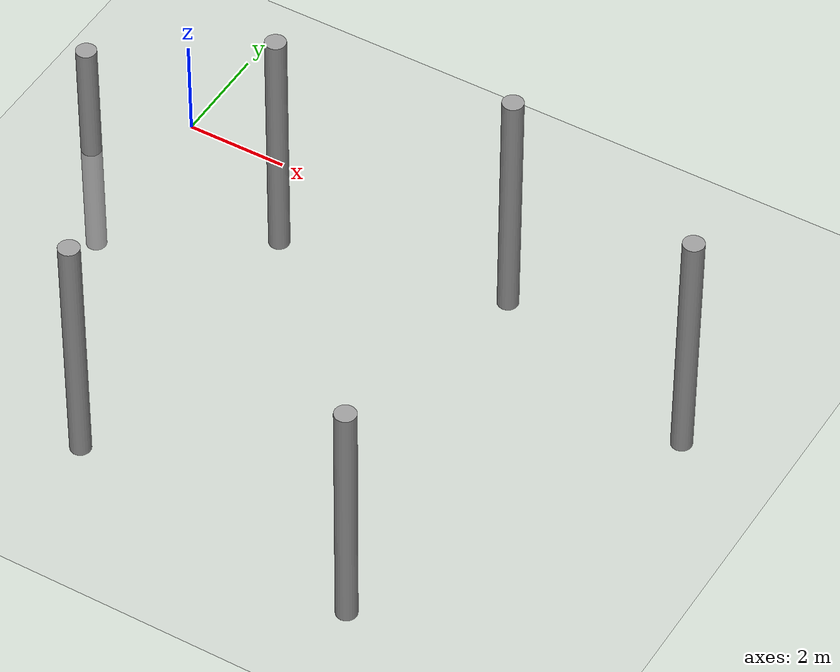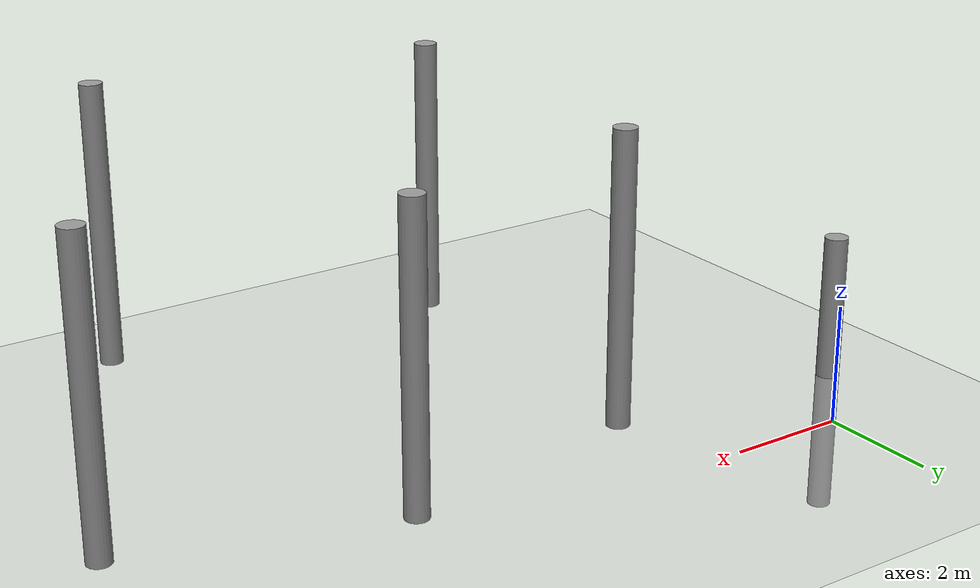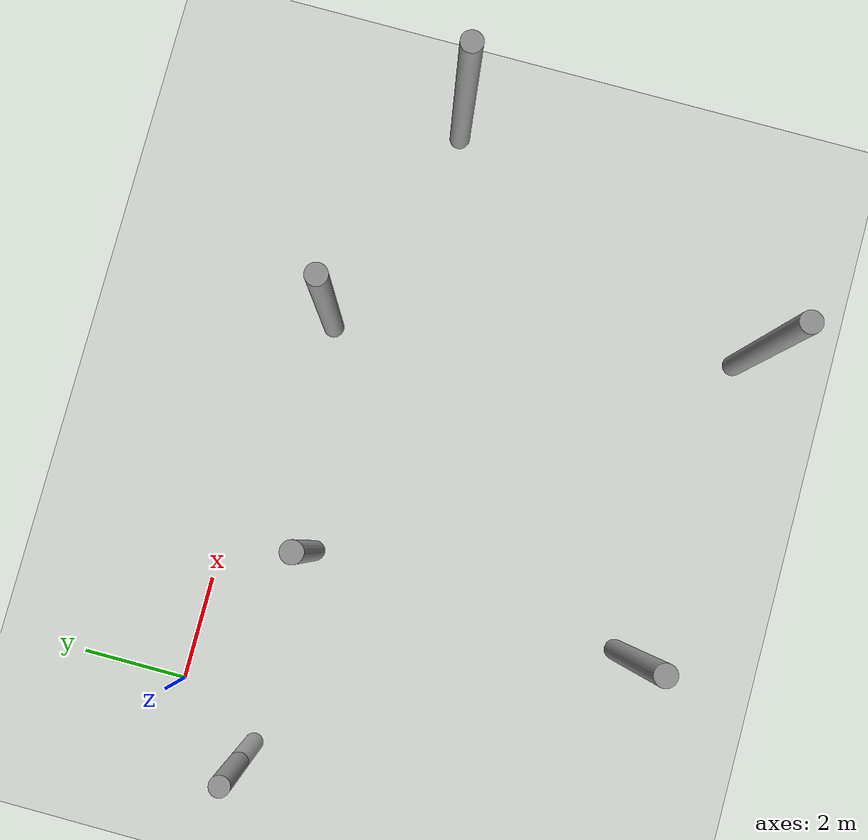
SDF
<sdf version="1.6">
 <world name="default">
  <model name="ground_plane">
   <static>1</static>
   <link name="link">
    <collision name="collision">
     <geometry><plane><normal>0 0 1</normal><size>100 100</size></plane></geometry>
     <surface><friction><ode><mu>100</mu><mu2>50</mu2></ode></friction></surface>
    </collision>
    <visual name="visual">
     <cast_shadows>0</cast_shadows>
     <geometry><plane><normal>0 0 1</normal><size>100 100</size></plane></geometry>
     <material>
      <script><uri>file://media/materials/scripts/gazebo.material</uri><name>Gazebo/Grey</name></script>
     </material>
    </visual>
   </link>
  </model>
  <model name="empty_pillars_8">
   <model name="empty_pillar_clone_30">
    <link name="link">
     <inertial>
      <mass>1</mass>
      <inertia><ixx>0.145833</ixx><ixy>0</ixy><ixz>0</ixz><iyy>0.145833</iyy><iyz>0</iyz><izz>0.125</izz></inertia>
     </inertial>
     <visual name="visual">
      <geometry><cylinder><radius>0.2</radius><length>5</length></cylinder></geometry>
      <material>
       <script><name>Gazebo/Grey</name><uri>file://media/materials/scripts/gazebo.material</uri></script>
       <shader type="vertex"><normal_map>__default__</normal_map></shader>
       <ambient>0.3 0.3 0.3 1</ambient>
       <diffuse>0.7 0.7 0.7 1</diffuse>
       <specular>0.01 0.01 0.01 1</specular>
       <emissive>0 0 0 1</emissive>
      </material>
     </visual>
     <collision name="collision">
      <geometry><cylinder><radius>0.05</radius><length>5</length></cylinder></geometry>
      <surface>
       <friction>
        <ode><mu>1</mu><mu2>1</mu2><fdir1>0 0 0</fdir1><slip1>0</slip1><slip2>0</slip2></ode>
        <torsional>
         <coefficient>1</coefficient>
         <patch_radius>0</patch_radius>
         <surface_radius>0</surface_radius>
         <use_patch_radius>1</use_patch_radius>
         <ode><slip>0</slip></ode>
        </torsional>
       </friction>
       <bounce><restitution_coefficient>0</restitution_coefficient><threshold>1e+06</threshold></bounce>
       <contact>
        <collide_without_contact>0</collide_without_contact>
        <collide_without_contact_bitmask>1</collide_without_contact_bitmask>
        <collide_bitmask>1</collide_bitmask>
        <ode>
         <soft_cfm>0</soft_cfm>
         <soft_erp>0.2</soft_erp>
         <kp>1e+13</kp>
         <kd>1</kd>
         <max_vel>0.01</max_vel>
         <min_depth>0</min_depth>
        </ode>
        <bullet>
         <split_impulse>1</split_impulse>
         <split_impulse_penetration_threshold>-0.01</split_impulse_penetration_threshold>
         <soft_cfm>0</soft_cfm>
         <soft_erp>0.2</soft_erp>
         <kp>1e+13</kp>
         <kd>1</kd>
        </bullet>
       </contact>
      </surface>
     </collision>
    </link>
    <static>0</static>
    <pose>23.752 19.2231 0 0 -0 0</pose>
   </model>
   <static>0</static>
   <pose>-25.0415 -20.6705 0 0 -0 0</pose>
  </model>
  <model name="empty_pillars_9">
   <model name="empty_pillar_clone_17">
    <link name="link">
     <inertial>
      <mass>1</mass>
      <inertia><ixx>0.145833</ixx><ixy>0</ixy><ixz>0</ixz><iyy>0.145833</iyy><iyz>0</iyz><izz>0.125</izz></inertia>
     </inertial>
     <visual name="visual">
      <geometry><cylinder><radius>0.2</radius><length>5</length></cylinder></geometry>
      <material>
       <script><name>Gazebo/Grey</name><uri>file://media/materials/scripts/gazebo.material</uri></script>
       <shader type="vertex"><normal_map>__default__</normal_map></shader>
       <ambient>0.3 0.3 0.3 1</ambient>
       <diffuse>0.7 0.7 0.7 1</diffuse>
       <specular>0.01 0.01 0.01 1</specular>
       <emissive>0 0 0 1</emissive>
      </material>
     </visual>
     <collision name="collision">
      <geometry><cylinder><radius>0.05</radius><length>5</length></cylinder></geometry>
      <surface>
       <friction>
        <ode><mu>1</mu><mu2>1</mu2><fdir1>0 0 0</fdir1><slip1>0</slip1><slip2>0</slip2></ode>
        <torsional>
         <coefficient>1</coefficient>
         <patch_radius>0</patch_radius>
         <surface_radius>0</surface_radius>
         <use_patch_radius>1</use_patch_radius>
         <ode><slip>0</slip></ode>
        </torsional>
       </friction>
       <bounce><restitution_coefficient>0</restitution_coefficient><threshold>1e+06</threshold></bounce>
       <contact>
        <collide_without_contact>0</collide_without_contact>
        <collide_without_contact_bitmask>1</collide_without_contact_bitmask>
        <collide_bitmask>1</collide_bitmask>
        <ode>
         <soft_cfm>0</soft_cfm>
         <soft_erp>0.2</soft_erp>
         <kp>1e+13</kp>
         <kd>1</kd>
         <max_vel>0.01</max_vel>
         <min_depth>0</min_depth>
        </ode>
        <bullet>
         <split_impulse>1</split_impulse>
         <split_impulse_penetration_threshold>-0.01</split_impulse_penetration_threshold>
         <soft_cfm>0</soft_cfm>
         <soft_erp>0.2</soft_erp>
         <kp>1e+13</kp>
         <kd>1</kd>
        </bullet>
       </contact>
      </surface>
     </collision>
    </link>
    <static>0</static>
    <pose>-16.0449 12.755 0 0 -0 0</pose>
   </model>
   <model name="empty_pillar_clone_20">
    <link name="link">
     <inertial>
      <mass>1</mass>
      <inertia><ixx>0.145833</ixx><ixy>0</ixy><ixz>0</ixz><iyy>0.145833</iyy><iyz>0</iyz><izz>0.125</izz></inertia>
     </inertial>
     <visual name="visual">
      <geometry><cylinder><radius>0.2</radius><length>5</length></cylinder></geometry>
      <material>
       <script><name>Gazebo/Grey</name><uri>file://media/materials/scripts/gazebo.material</uri></script>
       <shader type="vertex"><normal_map>__default__</normal_map></shader>
       <ambient>0.3 0.3 0.3 1</ambient>
       <diffuse>0.7 0.7 0.7 1</diffuse>
       <specular>0.01 0.01 0.01 1</specular>
       <emissive>0 0 0 1</emissive>
      </material>
     </visual>
     <collision name="collision">
      <geometry><cylinder><radius>0.05</radius><length>5</length></cylinder></geometry>
      <surface>
       <friction>
        <ode><mu>1</mu><mu2>1</mu2><fdir1>0 0 0</fdir1><slip1>0</slip1><slip2>0</slip2></ode>
        <torsional>
         <coefficient>1</coefficient>
         <patch_radius>0</patch_radius>
         <surface_radius>0</surface_radius>
         <use_patch_radius>1</use_patch_radius>
         <ode><slip>0</slip></ode>
        </torsional>
       </friction>
       <bounce><restitution_coefficient>0</restitution_coefficient><threshold>1e+06</threshold></bounce>
       <contact>
        <collide_without_contact>0</collide_without_contact>
        <collide_without_contact_bitmask>1</collide_without_contact_bitmask>
        <collide_bitmask>1</collide_bitmask>
        <ode>
         <soft_cfm>0</soft_cfm>
         <soft_erp>0.2</soft_erp>
         <kp>1e+13</kp>
         <kd>1</kd>
         <max_vel>0.01</max_vel>
         <min_depth>0</min_depth>
        </ode>
        <bullet>
         <split_impulse>1</split_impulse>
         <split_impulse_penetration_threshold>-0.01</split_impulse_penetration_threshold>
         <soft_cfm>0</soft_cfm>
         <soft_erp>0.2</soft_erp>
         <kp>1e+13</kp>
         <kd>1</kd>
        </bullet>
       </contact>
      </surface>
     </collision>
    </link>
    <static>0</static>
    <pose>-13.0146 19.1597 0 0 -0 0</pose>
   </model>
   <model name="empty_pillar_clone_21">
    <link name="link">
     <inertial>
      <mass>1</mass>
      <inertia><ixx>0.145833</ixx><ixy>0</ixy><ixz>0</ixz><iyy>0.145833</iyy><iyz>0</iyz><izz>0.125</izz></inertia>
     </inertial>
     <visual name="visual">
      <geometry><cylinder><radius>0.2</radius><length>5</length></cylinder></geometry>
      <material>
       <script><name>Gazebo/Grey</name><uri>file://media/materials/scripts/gazebo.material</uri></script>
       <shader type="vertex"><normal_map>__default__</normal_map></shader>
       <ambient>0.3 0.3 0.3 1</ambient>
       <diffuse>0.7 0.7 0.7 1</diffuse>
       <specular>0.01 0.01 0.01 1</specular>
       <emissive>0 0 0 1</emissive>
      </material>
     </visual>
     <collision name="collision">
      <geometry><cylinder><radius>0.05</radius><length>5</length></cylinder></geometry>
      <surface>
       <friction>
        <ode><mu>1</mu><mu2>1</mu2><fdir1>0 0 0</fdir1><slip1>0</slip1><slip2>0</slip2></ode>
        <torsional>
         <coefficient>1</coefficient>
         <patch_radius>0</patch_radius>
         <surface_radius>0</surface_radius>
         <use_patch_radius>1</use_patch_radius>
         <ode><slip>0</slip></ode>
        </torsional>
       </friction>
       <bounce><restitution_coefficient>0</restitution_coefficient><threshold>1e+06</threshold></bounce>
       <contact>
        <collide_without_contact>0</collide_without_contact>
        <collide_without_contact_bitmask>1</collide_without_contact_bitmask>
        <collide_bitmask>1</collide_bitmask>
        <ode>
         <soft_cfm>0</soft_cfm>
         <soft_erp>0.2</soft_erp>
         <kp>1e+13</kp>
         <kd>1</kd>
         <max_vel>0.01</max_vel>
         <min_depth>0</min_depth>
        </ode>
        <bullet>
         <split_impulse>1</split_impulse>
         <split_impulse_penetration_threshold>-0.01</split_impulse_penetration_threshold>
         <soft_cfm>0</soft_cfm>
         <soft_erp>0.2</soft_erp>
         <kp>1e+13</kp>
         <kd>1</kd>
        </bullet>
       </contact>
      </surface>
     </collision>
    </link>
    <static>0</static>
    <pose>-21.7273 19.7662 0 0 -0 0</pose>
   </model>
   <model name="empty_pillar_clone_22">
    <link name="link">
     <inertial>
      <mass>1</mass>
      <inertia><ixx>0.145833</ixx><ixy>0</ixy><ixz>0</ixz><iyy>0.145833</iyy><iyz>0</iyz><izz>0.125</izz></inertia>
     </inertial>
     <visual name="visual">
      <geometry><cylinder><radius>0.2</radius><length>5</length></cylinder></geometry>
      <material>
       <script><name>Gazebo/Grey</name><uri>file://media/materials/scripts/gazebo.material</uri></script>
       <shader type="vertex"><normal_map>__default__</normal_map></shader>
       <ambient>0.3 0.3 0.3 1</ambient>
       <diffuse>0.7 0.7 0.7 1</diffuse>
       <specular>0.01 0.01 0.01 1</specular>
       <emissive>0 0 0 1</emissive>
      </material>
     </visual>
     <collision name="collision">
      <geometry><cylinder><radius>0.05</radius><length>5</length></cylinder></geometry>
      <surface>
       <friction>
        <ode><mu>1</mu><mu2>1</mu2><fdir1>0 0 0</fdir1><slip1>0</slip1><slip2>0</slip2></ode>
        <torsional>
         <coefficient>1</coefficient>
         <patch_radius>0</patch_radius>
         <surface_radius>0</surface_radius>
         <use_patch_radius>1</use_patch_radius>
         <ode><slip>0</slip></ode>
        </torsional>
       </friction>
       <bounce><restitution_coefficient>0</restitution_coefficient><threshold>1e+06</threshold></bounce>
       <contact>
        <collide_without_contact>0</collide_without_contact>
        <collide_without_contact_bitmask>1</collide_without_contact_bitmask>
        <collide_bitmask>1</collide_bitmask>
        <ode>
         <soft_cfm>0</soft_cfm>
         <soft_erp>0.2</soft_erp>
         <kp>1e+13</kp>
         <kd>1</kd>
         <max_vel>0.01</max_vel>
         <min_depth>0</min_depth>
        </ode>
        <bullet>
         <split_impulse>1</split_impulse>
         <split_impulse_penetration_threshold>-0.01</split_impulse_penetration_threshold>
         <soft_cfm>0</soft_cfm>
         <soft_erp>0.2</soft_erp>
         <kp>1e+13</kp>
         <kd>1</kd>
        </bullet>
       </contact>
      </surface>
     </collision>
    </link>
    <static>0</static>
    <pose>-17.3667 20.5782 0 0 -0 0</pose>
   </model>
   <model name="empty_pillar_clone_50">
    <link name="link">
     <inertial>
      <mass>1</mass>
      <inertia><ixx>0.145833</ixx><ixy>0</ixy><ixz>0</ixz><iyy>0.145833</iyy><iyz>0</iyz><izz>0.125</izz></inertia>
     </inertial>
     <visual name="visual">
      <geometry><cylinder><radius>0.2</radius><length>5</length></cylinder></geometry>
      <material>
       <script><name>Gazebo/Grey</name><uri>file://media/materials/scripts/gazebo.material</uri></script>
       <shader type="vertex"><normal_map>__default__</normal_map></shader>
       <ambient>0.3 0.3 0.3 1</ambient>
       <diffuse>0.7 0.7 0.7 1</diffuse>
       <specular>0.01 0.01 0.01 1</specular>
       <emissive>0 0 0 1</emissive>
      </material>
     </visual>
     <collision name="collision">
      <geometry><cylinder><radius>0.05</radius><length>5</length></cylinder></geometry>
      <surface>
       <friction>
        <ode><mu>1</mu><mu2>1</mu2><fdir1>0 0 0</fdir1><slip1>0</slip1><slip2>0</slip2></ode>
        <torsional>
         <coefficient>1</coefficient>
         <patch_radius>0</patch_radius>
         <surface_radius>0</surface_radius>
         <use_patch_radius>1</use_patch_radius>
         <ode><slip>0</slip></ode>
        </torsional>
       </friction>
       <bounce><restitution_coefficient>0</restitution_coefficient><threshold>1e+06</threshold></bounce>
       <contact>
        <collide_without_contact>0</collide_without_contact>
        <collide_without_contact_bitmask>1</collide_without_contact_bitmask>
        <collide_bitmask>1</collide_bitmask>
        <ode>
         <soft_cfm>0</soft_cfm>
         <soft_erp>0.2</soft_erp>
         <kp>1e+13</kp>
         <kd>1</kd>
         <max_vel>0.01</max_vel>
         <min_depth>0</min_depth>
        </ode>
        <bullet>
         <split_impulse>1</split_impulse>
         <split_impulse_penetration_threshold>-0.01</split_impulse_penetration_threshold>
         <soft_cfm>0</soft_cfm>
         <soft_erp>0.2</soft_erp>
         <kp>1e+13</kp>
         <kd>1</kd>
        </bullet>
       </contact>
      </surface>
     </collision>
    </link>
    <static>0</static>
    <pose>-22.0498 13.6251 0 0 -0 0</pose>
   </model>
   <static>0</static>
   <pose>24.7676 -21.5571 2.56943 0 -0 0</pose>
  </model>
 </world>
</sdf>
